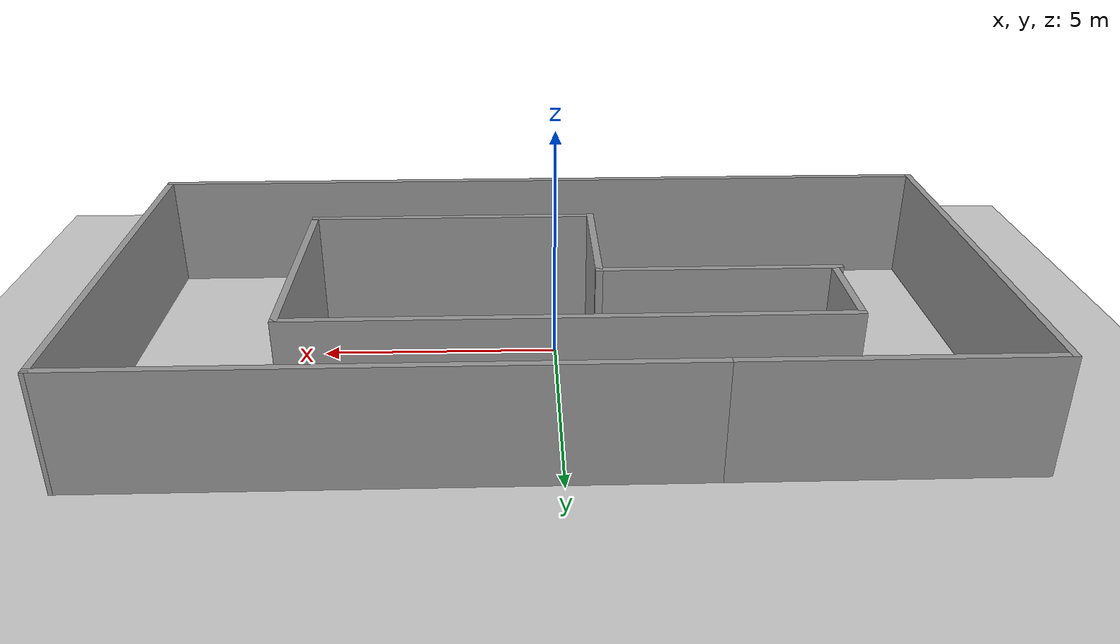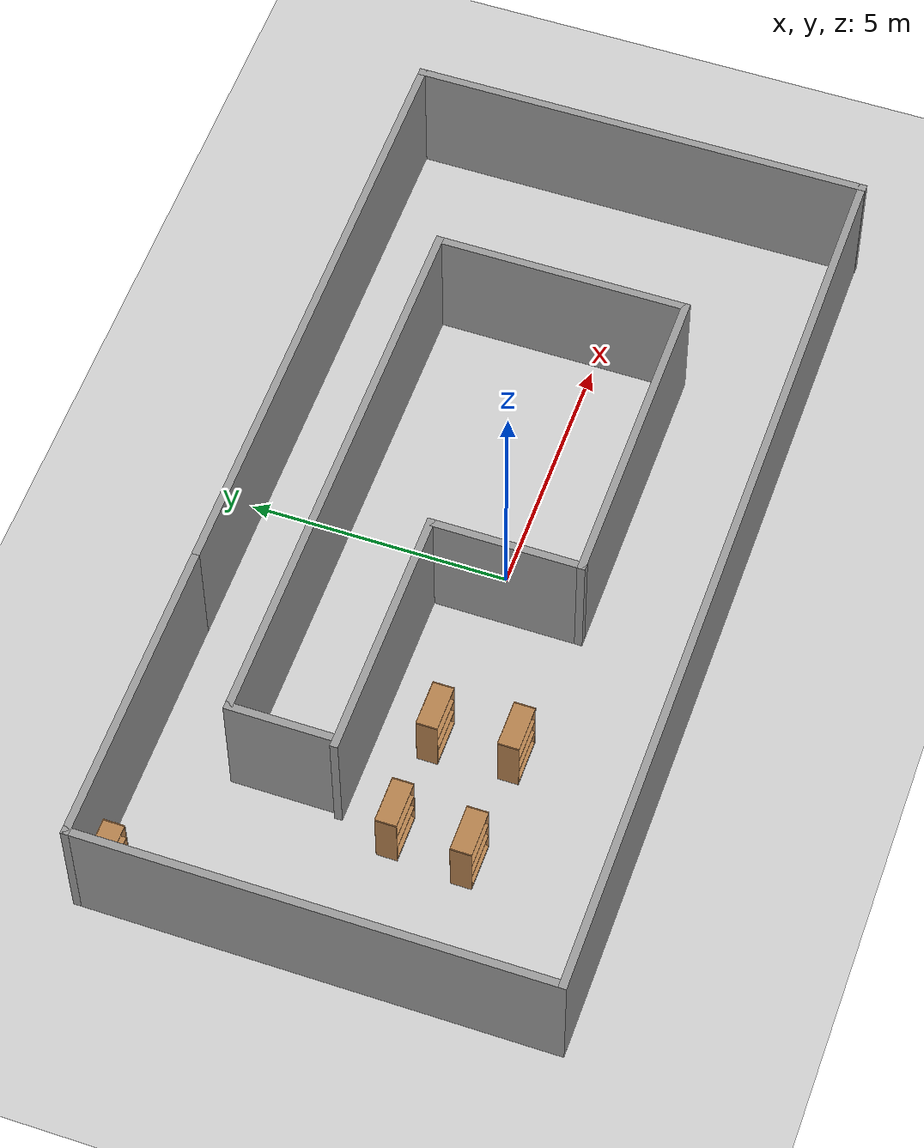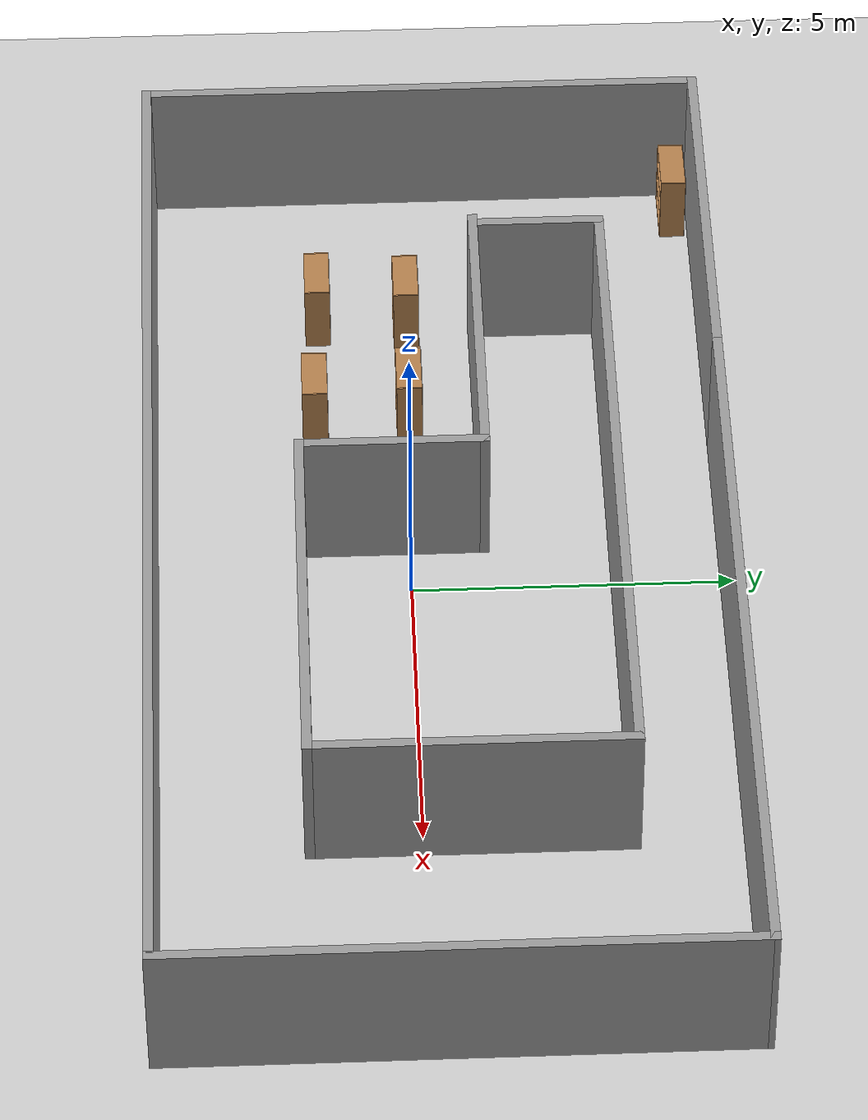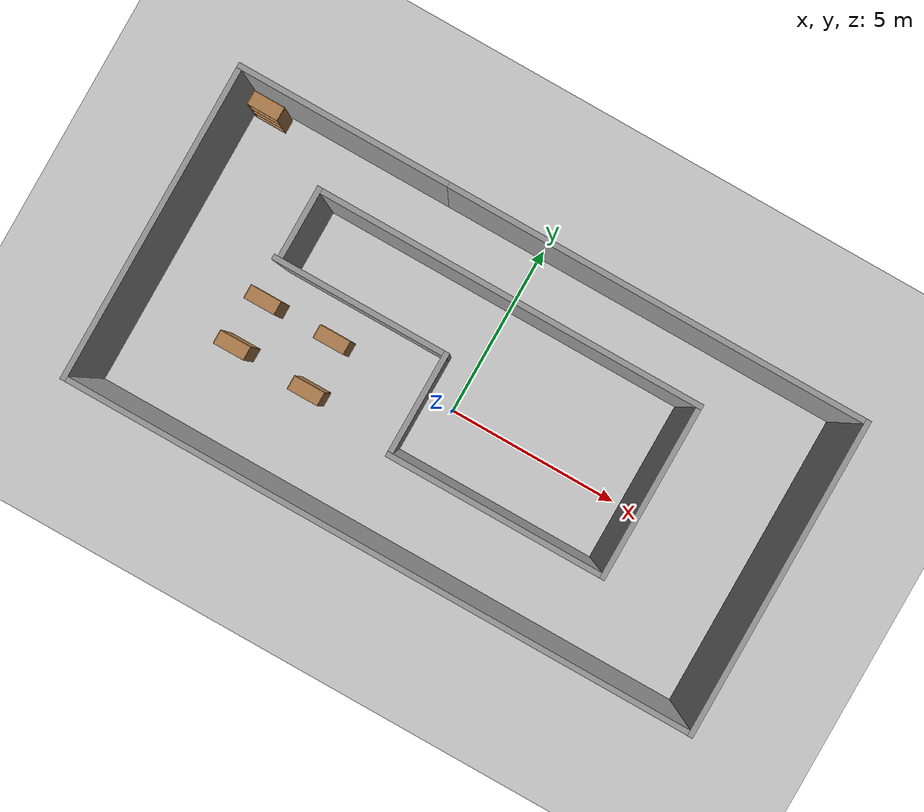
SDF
<sdf version="1.6">
 <world name="default">
  <light name="sun" type="directional">
   <pose>0 0 10 0 -0 0</pose>
   <diffuse>0.8 0.8 0.8 1</diffuse>
   <specular>0.1 0.1 0.1 1</specular>
   <attenuation>
    <range>1000</range>
    <constant>0.9</constant>
    <linear>0.01</linear>
    <quadratic>0.001</quadratic>
   </attenuation>
   <direction>-0.5 0.5 -1</direction>
  </light>
  <model name="ground_plane">
   <static>1</static>
   <link name="link">
    <collision name="collision">
     <geometry><plane><normal>0 0 1</normal><size>100 100</size></plane></geometry>
     <surface><friction><ode><mu>100</mu><mu2>50</mu2></ode></friction></surface>
    </collision>
    <visual name="visual">
     <cast_shadows>0</cast_shadows>
     <geometry><plane><normal>0 0 1</normal><size>100 100</size></plane></geometry>
     <material>
      <script><uri>file://media/materials/scripts/gazebo.material</uri><name>Gazebo/Grey</name></script>
     </material>
    </visual>
   </link>
  </model>
  <gravity>0 0 -9.8</gravity>
  <magnetic_field>6e-06 2.3e-05 -4.2e-05</magnetic_field>
  <atmosphere type="adiabatic"/>
  <physics name="default_physics" default="0" type="ode">
   <max_step_size>0.001</max_step_size>
   <real_time_factor>1</real_time_factor>
   <real_time_update_rate>1000</real_time_update_rate>
  </physics>
  <scene><ambient>0.4 0.4 0.4 1</ambient><background>0.7 0.7 0.7 1</background><shadows>1</shadows></scene>
  <spherical_coordinates>
   <surface_model>EARTH_WGS84</surface_model>
   <latitude_deg>0</latitude_deg>
   <longitude_deg>0</longitude_deg>
   <elevation>0</elevation>
   <heading_deg>0</heading_deg>
  </spherical_coordinates>
  <model name="wallroom">
   <pose>0.156276 0.426858 0 0 -0 0</pose>
   <link name="Wall_0">
    <collision name="Wall_0_Collision">
     <geometry><box><size>6 0.15 2.5</size></box></geometry>
     <pose>0 0 1.25 0 -0 0</pose>
    </collision>
    <visual name="Wall_0_Visual">
     <pose>0 0 1.25 0 -0 0</pose>
     <geometry><box><size>6 0.15 2.5</size></box></geometry>
     <material>
      <script><uri>file://media/materials/scripts/gazebo.material</uri><name>Gazebo/Grey</name></script>
      <ambient>1 1 1 1</ambient>
     </material>
    </visual>
    <pose>-6.0058 4.42925 0 0 -0 3.14159</pose>
   </link>
   <link name="Wall_1">
    <collision name="Wall_1_Collision">
     <geometry><box><size>9 0.15 2.5</size></box></geometry>
     <pose>0 0 1.25 0 -0 0</pose>
    </collision>
    <visual name="Wall_1_Visual">
     <pose>0 0 1.25 0 -0 0</pose>
     <geometry><box><size>9 0.15 2.5</size></box></geometry>
     <material>
      <script><uri>file://media/materials/scripts/gazebo.material</uri><name>Gazebo/Grey</name></script>
      <ambient>1 1 1 1</ambient>
     </material>
    </visual>
    <pose>-8.9308 0.00425 0 0 0 -1.5708</pose>
   </link>
   <link name="Wall_14">
    <collision name="Wall_14_Collision">
     <geometry><box><size>2 0.15 2.5</size></box></geometry>
     <pose>0 0 1.25 0 -0 0</pose>
    </collision>
    <visual name="Wall_14_Visual">
     <pose>0 0 1.25 0 -0 0</pose>
     <geometry><box><size>2 0.15 2.5</size></box></geometry>
     <material>
      <script><uri>file://media/materials/scripts/gazebo.material</uri><name>Gazebo/Grey</name></script>
      <ambient>1 1 1 1</ambient>
     </material>
    </visual>
    <pose>-5.73912 1.81129 0 0 -0 1.5708</pose>
   </link>
   <link name="Wall_18">
    <collision name="Wall_18_Collision">
     <geometry><box><size>11 0.15 2.5</size></box></geometry>
     <pose>0 0 1.25 0 -0 0</pose>
    </collision>
    <visual name="Wall_18_Visual">
     <pose>0 0 1.25 0 -0 0</pose>
     <geometry><box><size>11 0.15 2.5</size></box></geometry>
     <material>
      <script><uri>file://media/materials/scripts/gazebo.material</uri><name>Gazebo/Grey</name></script>
      <ambient>1 1 1 1</ambient>
     </material>
    </visual>
    <pose>-0.314119 2.73629 0 0 -0 0</pose>
   </link>
   <link name="Wall_19">
    <collision name="Wall_19_Collision">
     <geometry><box><size>5 0.15 2.5</size></box></geometry>
     <pose>0 0 1.25 0 -0 0</pose>
    </collision>
    <visual name="Wall_19_Visual">
     <pose>0 0 1.25 0 -0 0</pose>
     <geometry><box><size>5 0.15 2.5</size></box></geometry>
     <material>
      <script><uri>file://media/materials/scripts/gazebo.material</uri><name>Gazebo/Grey</name></script>
      <ambient>1 1 1 1</ambient>
     </material>
    </visual>
    <pose>5.11088 0.311289 0 0 0 -1.5708</pose>
   </link>
   <link name="Wall_20">
    <collision name="Wall_20_Collision">
     <geometry><box><size>6.25 0.15 2.5</size></box></geometry>
     <pose>0 0 1.25 0 -0 0</pose>
    </collision>
    <visual name="Wall_20_Visual">
     <pose>0 0 1.25 0 -0 0</pose>
     <geometry><box><size>6.25 0.15 2.5</size></box></geometry>
     <material>
      <script><uri>file://media/materials/scripts/gazebo.material</uri><name>Gazebo/Grey</name></script>
      <ambient>1 1 1 1</ambient>
     </material>
    </visual>
    <pose>2.06088 -2.11371 0 0 -0 3.14159</pose>
   </link>
   <link name="Wall_24">
    <collision name="Wall_24_Collision">
     <geometry><box><size>3 0.15 2.5</size></box></geometry>
     <pose>0 0 1.25 0 -0 0</pose>
    </collision>
    <visual name="Wall_24_Visual">
     <pose>0 0 1.25 0 -0 0</pose>
     <geometry><box><size>3 0.15 2.5</size></box></geometry>
     <material>
      <script><uri>file://media/materials/scripts/gazebo.material</uri><name>Gazebo/Grey</name></script>
      <ambient>1 1 1 1</ambient>
     </material>
    </visual>
    <pose>-0.989119 -0.688711 0 0 -0 1.5708</pose>
   </link>
   <link name="Wall_25">
    <collision name="Wall_25_Collision">
     <geometry><box><size>5 0.15 2.5</size></box></geometry>
     <pose>0 0 1.25 0 -0 0</pose>
    </collision>
    <visual name="Wall_25_Visual">
     <pose>0 0 1.25 0 -0 0</pose>
     <geometry><box><size>5 0.15 2.5</size></box></geometry>
     <material>
      <script><uri>file://media/materials/scripts/gazebo.material</uri><name>Gazebo/Grey</name></script>
      <ambient>1 1 1 1</ambient>
     </material>
    </visual>
    <pose>-3.41412 0.736289 0 0 -0 3.14159</pose>
   </link>
   <link name="Wall_3">
    <collision name="Wall_3_Collision">
     <geometry><box><size>9.00851 0.15 2.5</size></box></geometry>
     <pose>0 0 1.25 0 -0 0</pose>
    </collision>
    <visual name="Wall_3_Visual">
     <pose>0 0 1.25 0 -0 0</pose>
     <geometry><box><size>9.00851 0.15 2.5</size></box></geometry>
     <material>
      <script><uri>file://media/materials/scripts/gazebo.material</uri><name>Gazebo/Grey</name></script>
      <ambient>1 1 1 1</ambient>
     </material>
    </visual>
    <pose>8.92495 0 0 0 -0 1.5721</pose>
   </link>
   <link name="Wall_4">
    <collision name="Wall_4_Collision">
     <geometry><box><size>12 0.15 2.5</size></box></geometry>
     <pose>0 0 1.25 0 -0 0</pose>
    </collision>
    <visual name="Wall_4_Visual">
     <pose>0 0 1.25 0 -0 0</pose>
     <geometry><box><size>12 0.15 2.5</size></box></geometry>
     <material>
      <script><uri>file://media/materials/scripts/gazebo.material</uri><name>Gazebo/Grey</name></script>
      <ambient>1 1 1 1</ambient>
     </material>
    </visual>
    <pose>2.9942 4.42925 0 0 -0 3.14159</pose>
   </link>
   <link name="Wall_7">
    <collision name="Wall_7_Collision">
     <geometry><box><size>18 0.15 2.5</size></box></geometry>
     <pose>0 0 1.25 0 -0 0</pose>
    </collision>
    <visual name="Wall_7_Visual">
     <pose>0 0 1.25 0 -0 0</pose>
     <geometry><box><size>18 0.15 2.5</size></box></geometry>
     <material>
      <script><uri>file://media/materials/scripts/gazebo.material</uri><name>Gazebo/Grey</name></script>
      <ambient>1 1 1 1</ambient>
     </material>
    </visual>
    <pose>-0.005799 -4.42075 0 0 -0 0</pose>
   </link>
   <static>1</static>
  </model>
  <model name="bookshelf">
   <static>1</static>
   <link name="link">
    <inertial><mass>1</mass></inertial>
    <collision name="back">
     <pose>0 0.005 0.6 0 -0 0</pose>
     <geometry><box><size>0.9 0.01 1.2</size></box></geometry>
    </collision>
    <visual name="visual1">
     <pose>0 0.005 0.6 0 -0 0</pose>
     <geometry><box><size>0.9 0.01 1.2</size></box></geometry>
     <material>
      <script><uri>file://media/materials/scripts/gazebo.material</uri><name>Gazebo/Wood</name></script>
     </material>
    </visual>
    <collision name="left_side">
     <pose>0.45 -0.195 0.6 0 -0 0</pose>
     <geometry><box><size>0.02 0.4 1.2</size></box></geometry>
    </collision>
    <visual name="visual2">
     <pose>0.45 -0.195 0.6 0 -0 0</pose>
     <geometry><box><size>0.02 0.4 1.2</size></box></geometry>
     <material>
      <script><uri>file://media/materials/scripts/gazebo.material</uri><name>Gazebo/Wood</name></script>
     </material>
    </visual>
    <collision name="right_side">
     <pose>-0.45 -0.195 0.6 0 -0 0</pose>
     <geometry><box><size>0.02 0.4 1.2</size></box></geometry>
    </collision>
    <visual name="visual3">
     <pose>-0.45 -0.195 0.6 0 -0 0</pose>
     <geometry><box><size>0.02 0.4 1.2</size></box></geometry>
     <material>
      <script><uri>file://media/materials/scripts/gazebo.material</uri><name>Gazebo/Wood</name></script>
     </material>
    </visual>
    <collision name="bottom">
     <pose>0 -0.195 0.03 0 -0 0</pose>
     <geometry><box><size>0.88 0.4 0.06</size></box></geometry>
    </collision>
    <visual name="visual4">
     <pose>0 -0.195 0.03 0 -0 0</pose>
     <geometry><box><size>0.88 0.4 0.06</size></box></geometry>
     <material>
      <script><uri>file://media/materials/scripts/gazebo.material</uri><name>Gazebo/Wood</name></script>
     </material>
    </visual>
    <collision name="top">
     <pose>0 -0.195 1.19 0 -0 0</pose>
     <geometry><box><size>0.88 0.4 0.02</size></box></geometry>
    </collision>
    <visual name="visual5">
     <pose>0 -0.195 1.19 0 -0 0</pose>
     <geometry><box><size>0.88 0.4 0.02</size></box></geometry>
     <material>
      <script><uri>file://media/materials/scripts/gazebo.material</uri><name>Gazebo/Wood</name></script>
     </material>
    </visual>
    <collision name="low_shelf">
     <pose>0 -0.195 0.43 0 -0 0</pose>
     <geometry><box><size>0.88 0.4 0.02</size></box></geometry>
    </collision>
    <visual name="visual6">
     <pose>0 -0.195 0.43 0 -0 0</pose>
     <geometry><box><size>0.88 0.4 0.02</size></box></geometry>
     <material>
      <script><uri>file://media/materials/scripts/gazebo.material</uri><name>Gazebo/Wood</name></script>
     </material>
    </visual>
    <collision name="high_shelf">
     <pose>0 -0.195 0.8 0 -0 0</pose>
     <geometry><box><size>0.88 0.4 0.02</size></box></geometry>
    </collision>
    <visual name="visual7">
     <pose>0 -0.195 0.8 0 -0 0</pose>
     <geometry><box><size>0.88 0.4 0.02</size></box></geometry>
     <material>
      <script><uri>file://media/materials/scripts/gazebo.material</uri><name>Gazebo/Wood</name></script>
     </material>
    </visual>
   </link>
   <pose>-8.16851 4.72083 0 0 -0 0</pose>
  </model>
  <model name="bookshelf_0">
   <static>1</static>
   <link name="link">
    <inertial><mass>1</mass></inertial>
    <collision name="back">
     <pose>0 0.005 0.6 0 -0 0</pose>
     <geometry><box><size>0.9 0.01 1.2</size></box></geometry>
    </collision>
    <visual name="visual1">
     <pose>0 0.005 0.6 0 -0 0</pose>
     <geometry><box><size>0.9 0.01 1.2</size></box></geometry>
     <material>
      <script><uri>file://media/materials/scripts/gazebo.material</uri><name>Gazebo/Wood</name></script>
     </material>
    </visual>
    <collision name="left_side">
     <pose>0.45 -0.195 0.6 0 -0 0</pose>
     <geometry><box><size>0.02 0.4 1.2</size></box></geometry>
    </collision>
    <visual name="visual2">
     <pose>0.45 -0.195 0.6 0 -0 0</pose>
     <geometry><box><size>0.02 0.4 1.2</size></box></geometry>
     <material>
      <script><uri>file://media/materials/scripts/gazebo.material</uri><name>Gazebo/Wood</name></script>
     </material>
    </visual>
    <collision name="right_side">
     <pose>-0.45 -0.195 0.6 0 -0 0</pose>
     <geometry><box><size>0.02 0.4 1.2</size></box></geometry>
    </collision>
    <visual name="visual3">
     <pose>-0.45 -0.195 0.6 0 -0 0</pose>
     <geometry><box><size>0.02 0.4 1.2</size></box></geometry>
     <material>
      <script><uri>file://media/materials/scripts/gazebo.material</uri><name>Gazebo/Wood</name></script>
     </material>
    </visual>
    <collision name="bottom">
     <pose>0 -0.195 0.03 0 -0 0</pose>
     <geometry><box><size>0.88 0.4 0.06</size></box></geometry>
    </collision>
    <visual name="visual4">
     <pose>0 -0.195 0.03 0 -0 0</pose>
     <geometry><box><size>0.88 0.4 0.06</size></box></geometry>
     <material>
      <script><uri>file://media/materials/scripts/gazebo.material</uri><name>Gazebo/Wood</name></script>
     </material>
    </visual>
    <collision name="top">
     <pose>0 -0.195 1.19 0 -0 0</pose>
     <geometry><box><size>0.88 0.4 0.02</size></box></geometry>
    </collision>
    <visual name="visual5">
     <pose>0 -0.195 1.19 0 -0 0</pose>
     <geometry><box><size>0.88 0.4 0.02</size></box></geometry>
     <material>
      <script><uri>file://media/materials/scripts/gazebo.material</uri><name>Gazebo/Wood</name></script>
     </material>
    </visual>
    <collision name="low_shelf">
     <pose>0 -0.195 0.43 0 -0 0</pose>
     <geometry><box><size>0.88 0.4 0.02</size></box></geometry>
    </collision>
    <visual name="visual6">
     <pose>0 -0.195 0.43 0 -0 0</pose>
     <geometry><box><size>0.88 0.4 0.02</size></box></geometry>
     <material>
      <script><uri>file://media/materials/scripts/gazebo.material</uri><name>Gazebo/Wood</name></script>
     </material>
    </visual>
    <collision name="high_shelf">
     <pose>0 -0.195 0.8 0 -0 0</pose>
     <geometry><box><size>0.88 0.4 0.02</size></box></geometry>
    </collision>
    <visual name="visual7">
     <pose>0 -0.195 0.8 0 -0 0</pose>
     <geometry><box><size>0.88 0.4 0.02</size></box></geometry>
     <material>
      <script><uri>file://media/materials/scripts/gazebo.material</uri><name>Gazebo/Wood</name></script>
     </material>
    </visual>
   </link>
   <pose>-3.66617 0.27458 0 0 -0 0</pose>
  </model>
  <model name="bookshelf_1">
   <static>1</static>
   <link name="link">
    <inertial><mass>1</mass></inertial>
    <collision name="back">
     <pose>0 0.005 0.6 0 -0 0</pose>
     <geometry><box><size>0.9 0.01 1.2</size></box></geometry>
    </collision>
    <visual name="visual1">
     <pose>0 0.005 0.6 0 -0 0</pose>
     <geometry><box><size>0.9 0.01 1.2</size></box></geometry>
     <material>
      <script><uri>file://media/materials/scripts/gazebo.material</uri><name>Gazebo/Wood</name></script>
     </material>
    </visual>
    <collision name="left_side">
     <pose>0.45 -0.195 0.6 0 -0 0</pose>
     <geometry><box><size>0.02 0.4 1.2</size></box></geometry>
    </collision>
    <visual name="visual2">
     <pose>0.45 -0.195 0.6 0 -0 0</pose>
     <geometry><box><size>0.02 0.4 1.2</size></box></geometry>
     <material>
      <script><uri>file://media/materials/scripts/gazebo.material</uri><name>Gazebo/Wood</name></script>
     </material>
    </visual>
    <collision name="right_side">
     <pose>-0.45 -0.195 0.6 0 -0 0</pose>
     <geometry><box><size>0.02 0.4 1.2</size></box></geometry>
    </collision>
    <visual name="visual3">
     <pose>-0.45 -0.195 0.6 0 -0 0</pose>
     <geometry><box><size>0.02 0.4 1.2</size></box></geometry>
     <material>
      <script><uri>file://media/materials/scripts/gazebo.material</uri><name>Gazebo/Wood</name></script>
     </material>
    </visual>
    <collision name="bottom">
     <pose>0 -0.195 0.03 0 -0 0</pose>
     <geometry><box><size>0.88 0.4 0.06</size></box></geometry>
    </collision>
    <visual name="visual4">
     <pose>0 -0.195 0.03 0 -0 0</pose>
     <geometry><box><size>0.88 0.4 0.06</size></box></geometry>
     <material>
      <script><uri>file://media/materials/scripts/gazebo.material</uri><name>Gazebo/Wood</name></script>
     </material>
    </visual>
    <collision name="top">
     <pose>0 -0.195 1.19 0 -0 0</pose>
     <geometry><box><size>0.88 0.4 0.02</size></box></geometry>
    </collision>
    <visual name="visual5">
     <pose>0 -0.195 1.19 0 -0 0</pose>
     <geometry><box><size>0.88 0.4 0.02</size></box></geometry>
     <material>
      <script><uri>file://media/materials/scripts/gazebo.material</uri><name>Gazebo/Wood</name></script>
     </material>
    </visual>
    <collision name="low_shelf">
     <pose>0 -0.195 0.43 0 -0 0</pose>
     <geometry><box><size>0.88 0.4 0.02</size></box></geometry>
    </collision>
    <visual name="visual6">
     <pose>0 -0.195 0.43 0 -0 0</pose>
     <geometry><box><size>0.88 0.4 0.02</size></box></geometry>
     <material>
      <script><uri>file://media/materials/scripts/gazebo.material</uri><name>Gazebo/Wood</name></script>
     </material>
    </visual>
    <collision name="high_shelf">
     <pose>0 -0.195 0.8 0 -0 0</pose>
     <geometry><box><size>0.88 0.4 0.02</size></box></geometry>
    </collision>
    <visual name="visual7">
     <pose>0 -0.195 0.8 0 -0 0</pose>
     <geometry><box><size>0.88 0.4 0.02</size></box></geometry>
     <material>
      <script><uri>file://media/materials/scripts/gazebo.material</uri><name>Gazebo/Wood</name></script>
     </material>
    </visual>
   </link>
   <pose>-3.59269 -1.21931 0 0 -0 0</pose>
  </model>
  <model name="bookshelf_2">
   <static>1</static>
   <link name="link">
    <inertial><mass>1</mass></inertial>
    <collision name="back">
     <pose>0 0.005 0.6 0 -0 0</pose>
     <geometry><box><size>0.9 0.01 1.2</size></box></geometry>
    </collision>
    <visual name="visual1">
     <pose>0 0.005 0.6 0 -0 0</pose>
     <geometry><box><size>0.9 0.01 1.2</size></box></geometry>
     <material>
      <script><uri>file://media/materials/scripts/gazebo.material</uri><name>Gazebo/Wood</name></script>
     </material>
    </visual>
    <collision name="left_side">
     <pose>0.45 -0.195 0.6 0 -0 0</pose>
     <geometry><box><size>0.02 0.4 1.2</size></box></geometry>
    </collision>
    <visual name="visual2">
     <pose>0.45 -0.195 0.6 0 -0 0</pose>
     <geometry><box><size>0.02 0.4 1.2</size></box></geometry>
     <material>
      <script><uri>file://media/materials/scripts/gazebo.material</uri><name>Gazebo/Wood</name></script>
     </material>
    </visual>
    <collision name="right_side">
     <pose>-0.45 -0.195 0.6 0 -0 0</pose>
     <geometry><box><size>0.02 0.4 1.2</size></box></geometry>
    </collision>
    <visual name="visual3">
     <pose>-0.45 -0.195 0.6 0 -0 0</pose>
     <geometry><box><size>0.02 0.4 1.2</size></box></geometry>
     <material>
      <script><uri>file://media/materials/scripts/gazebo.material</uri><name>Gazebo/Wood</name></script>
     </material>
    </visual>
    <collision name="bottom">
     <pose>0 -0.195 0.03 0 -0 0</pose>
     <geometry><box><size>0.88 0.4 0.06</size></box></geometry>
    </collision>
    <visual name="visual4">
     <pose>0 -0.195 0.03 0 -0 0</pose>
     <geometry><box><size>0.88 0.4 0.06</size></box></geometry>
     <material>
      <script><uri>file://media/materials/scripts/gazebo.material</uri><name>Gazebo/Wood</name></script>
     </material>
    </visual>
    <collision name="top">
     <pose>0 -0.195 1.19 0 -0 0</pose>
     <geometry><box><size>0.88 0.4 0.02</size></box></geometry>
    </collision>
    <visual name="visual5">
     <pose>0 -0.195 1.19 0 -0 0</pose>
     <geometry><box><size>0.88 0.4 0.02</size></box></geometry>
     <material>
      <script><uri>file://media/materials/scripts/gazebo.material</uri><name>Gazebo/Wood</name></script>
     </material>
    </visual>
    <collision name="low_shelf">
     <pose>0 -0.195 0.43 0 -0 0</pose>
     <geometry><box><size>0.88 0.4 0.02</size></box></geometry>
    </collision>
    <visual name="visual6">
     <pose>0 -0.195 0.43 0 -0 0</pose>
     <geometry><box><size>0.88 0.4 0.02</size></box></geometry>
     <material>
      <script><uri>file://media/materials/scripts/gazebo.material</uri><name>Gazebo/Wood</name></script>
     </material>
    </visual>
    <collision name="high_shelf">
     <pose>0 -0.195 0.8 0 -0 0</pose>
     <geometry><box><size>0.88 0.4 0.02</size></box></geometry>
    </collision>
    <visual name="visual7">
     <pose>0 -0.195 0.8 0 -0 0</pose>
     <geometry><box><size>0.88 0.4 0.02</size></box></geometry>
     <material>
      <script><uri>file://media/materials/scripts/gazebo.material</uri><name>Gazebo/Wood</name></script>
     </material>
    </visual>
   </link>
   <pose>-5.85675 -1.13389 0 0 -0 0</pose>
  </model>
  <model name="bookshelf_3">
   <static>1</static>
   <link name="link">
    <inertial><mass>1</mass></inertial>
    <collision name="back">
     <pose>0 0.005 0.6 0 -0 0</pose>
     <geometry><box><size>0.9 0.01 1.2</size></box></geometry>
    </collision>
    <visual name="visual1">
     <pose>0 0.005 0.6 0 -0 0</pose>
     <geometry><box><size>0.9 0.01 1.2</size></box></geometry>
     <material>
      <script><uri>file://media/materials/scripts/gazebo.material</uri><name>Gazebo/Wood</name></script>
     </material>
    </visual>
    <collision name="left_side">
     <pose>0.45 -0.195 0.6 0 -0 0</pose>
     <geometry><box><size>0.02 0.4 1.2</size></box></geometry>
    </collision>
    <visual name="visual2">
     <pose>0.45 -0.195 0.6 0 -0 0</pose>
     <geometry><box><size>0.02 0.4 1.2</size></box></geometry>
     <material>
      <script><uri>file://media/materials/scripts/gazebo.material</uri><name>Gazebo/Wood</name></script>
     </material>
    </visual>
    <collision name="right_side">
     <pose>-0.45 -0.195 0.6 0 -0 0</pose>
     <geometry><box><size>0.02 0.4 1.2</size></box></geometry>
    </collision>
    <visual name="visual3">
     <pose>-0.45 -0.195 0.6 0 -0 0</pose>
     <geometry><box><size>0.02 0.4 1.2</size></box></geometry>
     <material>
      <script><uri>file://media/materials/scripts/gazebo.material</uri><name>Gazebo/Wood</name></script>
     </material>
    </visual>
    <collision name="bottom">
     <pose>0 -0.195 0.03 0 -0 0</pose>
     <geometry><box><size>0.88 0.4 0.06</size></box></geometry>
    </collision>
    <visual name="visual4">
     <pose>0 -0.195 0.03 0 -0 0</pose>
     <geometry><box><size>0.88 0.4 0.06</size></box></geometry>
     <material>
      <script><uri>file://media/materials/scripts/gazebo.material</uri><name>Gazebo/Wood</name></script>
     </material>
    </visual>
    <collision name="top">
     <pose>0 -0.195 1.19 0 -0 0</pose>
     <geometry><box><size>0.88 0.4 0.02</size></box></geometry>
    </collision>
    <visual name="visual5">
     <pose>0 -0.195 1.19 0 -0 0</pose>
     <geometry><box><size>0.88 0.4 0.02</size></box></geometry>
     <material>
      <script><uri>file://media/materials/scripts/gazebo.material</uri><name>Gazebo/Wood</name></script>
     </material>
    </visual>
    <collision name="low_shelf">
     <pose>0 -0.195 0.43 0 -0 0</pose>
     <geometry><box><size>0.88 0.4 0.02</size></box></geometry>
    </collision>
    <visual name="visual6">
     <pose>0 -0.195 0.43 0 -0 0</pose>
     <geometry><box><size>0.88 0.4 0.02</size></box></geometry>
     <material>
      <script><uri>file://media/materials/scripts/gazebo.material</uri><name>Gazebo/Wood</name></script>
     </material>
    </visual>
    <collision name="high_shelf">
     <pose>0 -0.195 0.8 0 -0 0</pose>
     <geometry><box><size>0.88 0.4 0.02</size></box></geometry>
    </collision>
    <visual name="visual7">
     <pose>0 -0.195 0.8 0 -0 0</pose>
     <geometry><box><size>0.88 0.4 0.02</size></box></geometry>
     <material>
      <script><uri>file://media/materials/scripts/gazebo.material</uri><name>Gazebo/Wood</name></script>
     </material>
    </visual>
   </link>
   <pose>-5.74554 0.285248 0 0 -0 0</pose>
  </model>
 </world>
</sdf>
